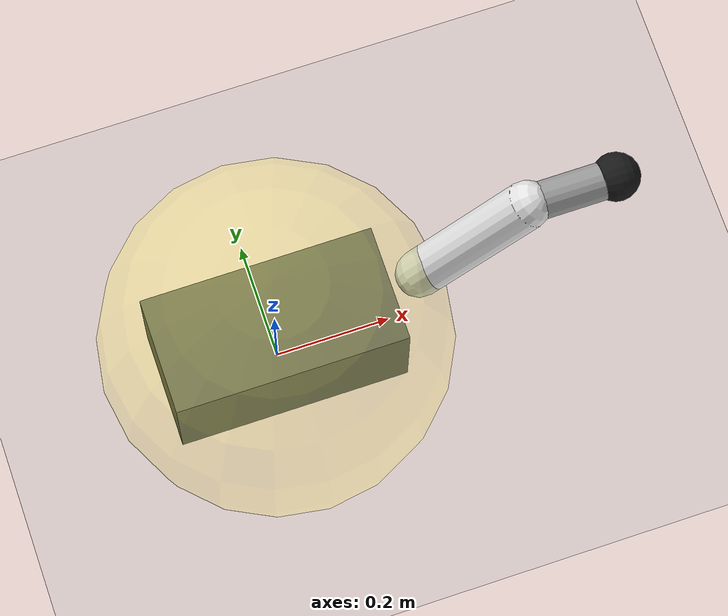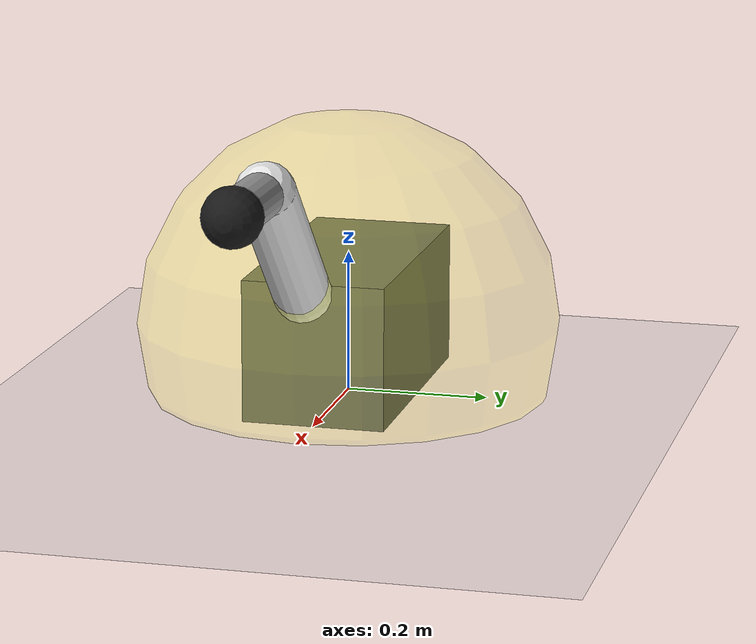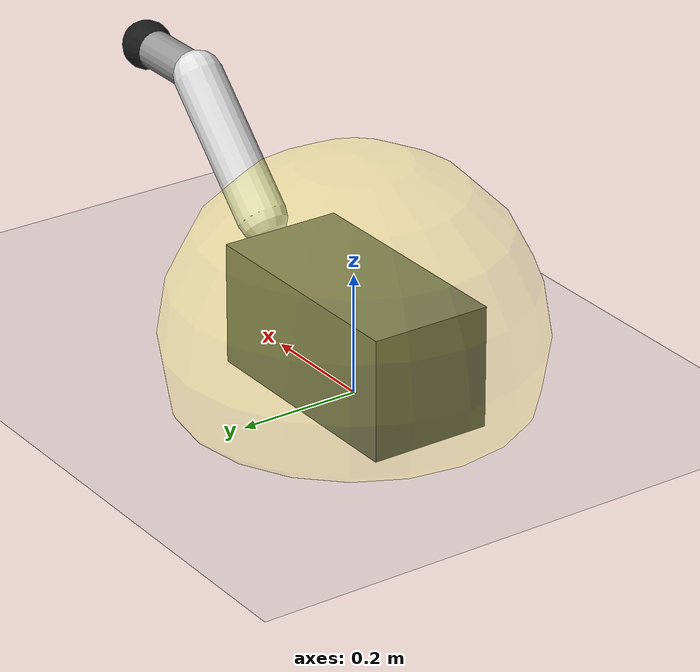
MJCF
<mujoco model="Space Dragger">
  <option timestep="0.005"/>

  <asset>
    <texture type="skybox" builtin="gradient" rgb1=".0 .0 .0" rgb2="0. 0.0 .1" width="512" height="512"/>
    <texture name="body" type="cube" builtin="flat" mark="cross" width="127" height="1278"
             rgb1="0.4 0.4 0.4" rgb2="0.4 0.4 0.4" markrgb="0 0 0" random="0.01"/>
    <material name="body" texture="body" texuniform="true"/>
    <texture name="grid" type="2d" builtin="checker" width="512" height="512" rgb1=".6 .6 .6" rgb2=".9 .9 .9"/>
    <material name="grid" texture="grid" texrepeat="1 1" texuniform="true" reflectance=".2"/>
  </asset>

  <default>
    <motor ctrlrange="-1 1" ctrllimited="true"/>
    <default class="body">
      <geom type="capsule" condim="1" friction=".7" solimp=".9 .99 .003" solref=".015 1" material="body"/>
      <joint type="hinge" damping=".2" stiffness="1" armature=".01" limited="true" solimplimit="0 .99 .01"/>
      <default class="big_joint">
        <joint damping="5" stiffness="10"/>
        <default class="big_stiff_joint">
          <joint stiffness="20"/>
        </default>
      </default>
    </default>

    <default class="target_slider">
        <joint armature="10000" damping="10000" limited="true" pos="0 0 0" range="-1000 1000" ref=".1" stiffness="0" type="slide"/>
        <geom conaffinity="0" pos="0 0 0" rgba=" 1 0 1 0.5" size="0.005" type="sphere"/>
    </default>

  </default>

  <visual>
    <map force="0.1" zfar="30"/>
    <rgba haze="0.15 0.25 0.35 .1"/>
    <quality shadowsize="4096"/>
    <global offwidth="800" offheight="800"/>
  </visual>

  <worldbody>
    <geom name="floor" size="0 0 .05" type="plane" material="grid" condim="3"/>
    <light name="spotlight" mode="targetbodycom" target="torso"
           diffuse=".8 .8 .8" specular="0.3 0.3 0.3" pos="0 -20 4" cutoff="10"/>

    <body name="torso" pos="0 0 .1" childclass="body">
      <light name="top" pos="0 0 2" mode="trackcom"/>
      <camera name="back" pos="-3 0 1" xyaxes="0 -1 0 1 0 5" mode="trackcom"/>
      <camera name="front" pos="3 0 1" xyaxes="0 1 0 -1 0 5" mode="trackcom"/>
      <camera name="side" pos="0 -3 1" xyaxes="1 0 0 0 1 3" mode="trackcom"/>
      <camera name="isometric" pos="2 -2 1" xyaxes="1 1 0 0 1 3" mode="trackcom"/>
      <freejoint name="root"/>
      <geom name="base" type="box" size=".2 .1 .1" density="300"/>
      <site name="robot_sensor_zone" rgba="1 1 0 0.1" size="0.3" type="sphere"/>

      <body name="arm1" pos="0.25 .0 .1" euler="0 45 0">
        <joint name="arm1" axis="0 1 0" range="0 90"/>
        <geom name="arm1" fromto="0 0 0 .0 .0 .25" size=".04" density="500" rgba=".9 .9 .9 .9"/>
        <body name="arm2" pos="0 .0 .25" euler="0 45 0">
          <joint name="arm2" axis="0 1 0" range="0 90"/>
          <geom name="arm2" fromto="0 0 0 .0 .0 .15" size=".031" rgba="0.6 0.6 0.6 .9" density="500"/>
          <geom name="foot" pos="0 0 .15" type="sphere" size=".04" rgba=".1 .1 .1 1"/>
        </body>
      </body>
    </body>
  </worldbody>

  <actuator>
    <motor name="arm1"  gear="20"  joint="arm1"/>
    <motor name="arm2" gear="20"  joint="arm2"/>
  </actuator>

  <sensor>
      <jointpos joint="arm1" noise="0"/>
      <jointpos joint="arm2" noise="0"/>
      <framepos objtype="site"  objname="robot_sensor_zone"  noise="0"/>
  </sensor>

</mujoco>
